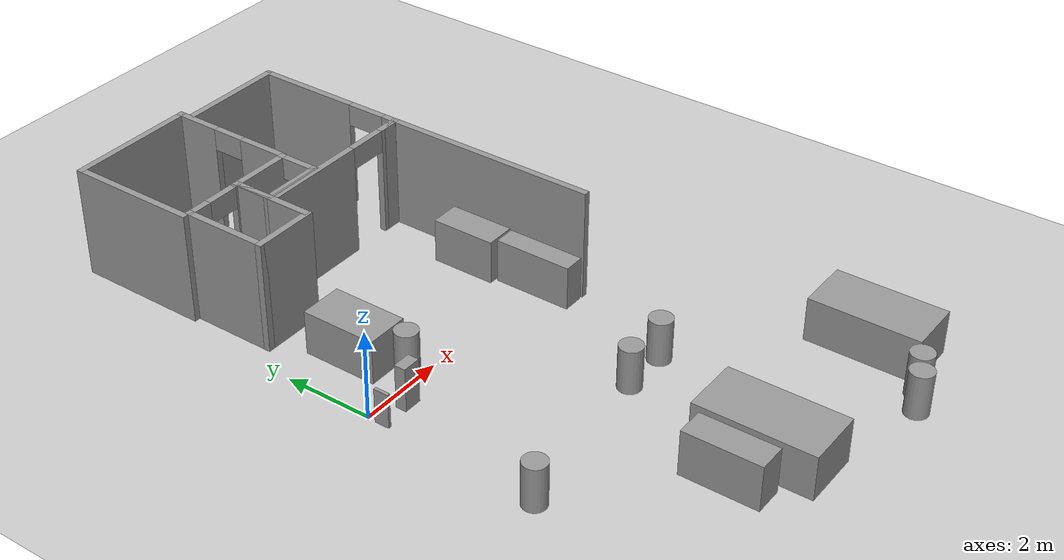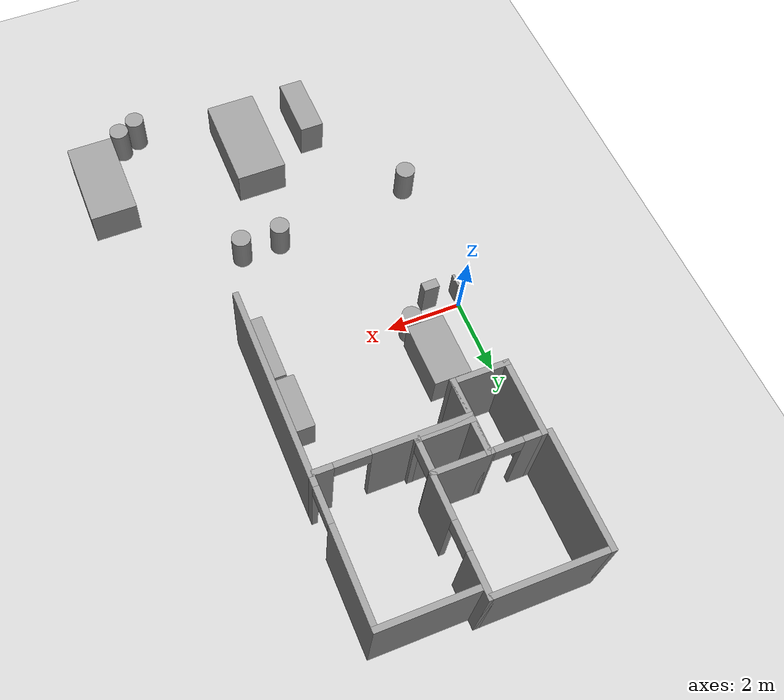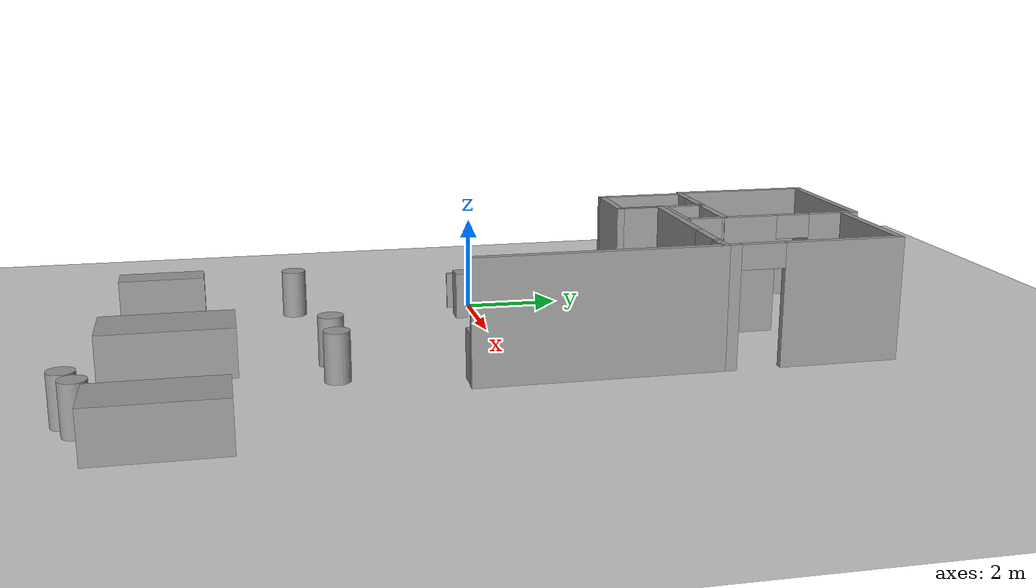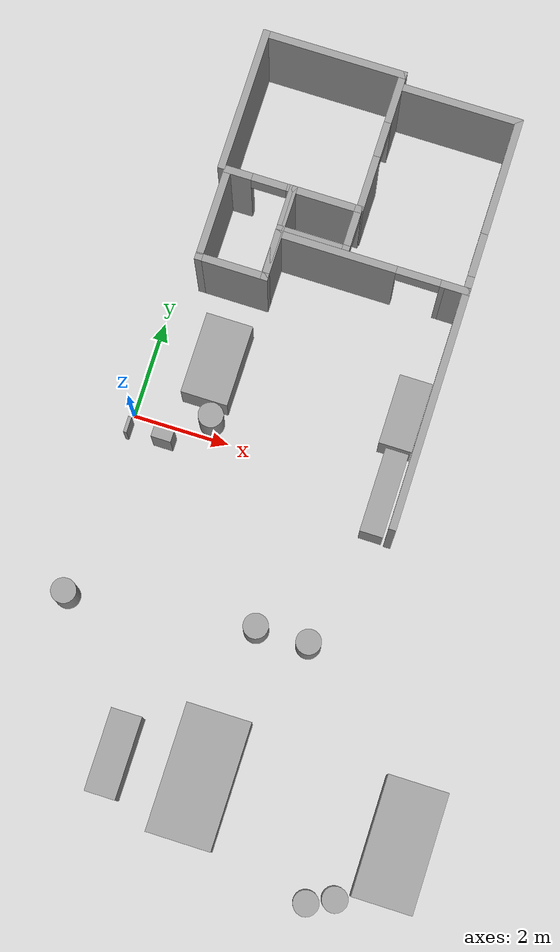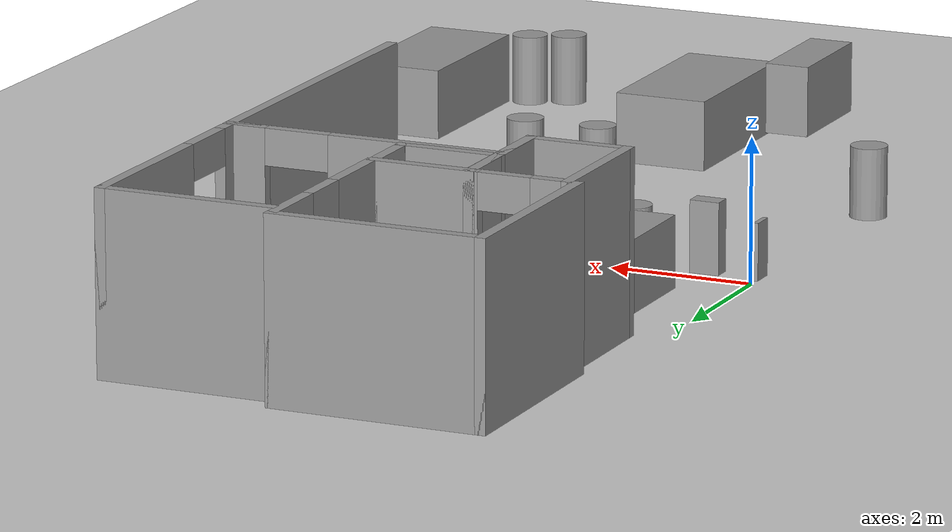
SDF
<sdf version="1.9">
 <world name="default">
  <model name="ground_plane">
   <static>true</static>
   <link name="link">
    <collision name="collision">
     <geometry><plane><normal>0 0 1</normal><size>100 100</size></plane></geometry>
     <surface><friction><ode><mu>100</mu><mu2>50</mu2></ode></friction></surface>
    </collision>
    <visual name="visual">
     <cast_shadows>false</cast_shadows>
     <geometry><plane><normal>0 0 1</normal><size>100 100</size></plane></geometry>
     <material>
      <script><uri>file://media/materials/scripts/gazebo.material</uri><name>Gazebo/Grey</name></script>
     </material>
    </visual>
   </link>
  </model>
  <model name="cma_L5">
   <pose>3.77502 1.45512 0 0 0 0</pose>
   <link name="Wall_0">
    <collision name="Wall_0_Collision">
     <geometry><box><size>1 0.14999999999999999 2.5</size></box></geometry>
     <pose>0 0 1.25 0 0 0</pose>
    </collision>
    <visual name="Wall_0_Visual">
     <pose>0 0 1.25 0 0 0</pose>
     <geometry><box><size>1 0.14999999999999999 2.5</size></box></geometry>
     <material>
      <script><uri>file://media/materials/scripts/gazebo.material</uri><name>Gazebo/Grey</name></script>
      <ambient>1 1 1 1</ambient>
     </material>
    </visual>
    <pose>-1.925 2 0 0 0 1.5708</pose>
   </link>
   <link name="Wall_1">
    <pose>0 2.4249999999999998 0 0 0 0</pose>
    <visual name="Wall_1_Visual_0">
     <pose>-0.75249999999999995 0 1.25 0 0 0</pose>
     <geometry><box><size>2.4950000000000001 0.14999999999999999 2.5</size></box></geometry>
     <material>
      <script><uri>file://media/materials/scripts/gazebo.material</uri><name>Gazebo/Grey</name></script>
      <ambient>1 1 1 1</ambient>
     </material>
    </visual>
    <collision name="Wall_1_Collision_0">
     <geometry><box><size>2.4950000000000001 0.14999999999999999 2.5</size></box></geometry>
     <pose>-0.75249999999999995 0 1.25 0 0 0</pose>
    </collision>
    <visual name="Wall_1_Visual_1">
     <pose>1.6975 0 1.25 0 0 0</pose>
     <geometry><box><size>0.60499999999999998 0.14999999999999999 2.5</size></box></geometry>
     <material>
      <script><uri>file://media/materials/scripts/gazebo.material</uri><name>Gazebo/Grey</name></script>
      <ambient>1 1 1 1</ambient>
     </material>
    </visual>
    <collision name="Wall_1_Collision_1">
     <geometry><box><size>0.60499999999999998 0.14999999999999999 2.5</size></box></geometry>
     <pose>1.6975 0 1.25 0 0 0</pose>
    </collision>
    <visual name="Wall_1_Visual_2">
     <pose>0.94499999999999995 0 2.25 0 0 0</pose>
     <geometry><box><size>0.90000000000000002 0.14999999999999999 0.5</size></box></geometry>
     <material>
      <script><uri>file://media/materials/scripts/gazebo.material</uri><name>Gazebo/Grey</name></script>
      <ambient>1 1 1 1</ambient>
     </material>
    </visual>
    <collision name="Wall_1_Collision_2">
     <geometry><box><size>0.90000000000000002 0.14999999999999999 0.5</size></box></geometry>
     <pose>0.94499999999999995 0 2.25 0 0 0</pose>
    </collision>
   </link>
   <link name="Wall_3">
    <collision name="Wall_3_Collision">
     <geometry><box><size>5 0.14999999999999999 2.5</size></box></geometry>
     <pose>0 0 1.25 0 0 0</pose>
    </collision>
    <visual name="Wall_3_Visual">
     <pose>0 0 1.25 0 0 0</pose>
     <geometry><box><size>5 0.14999999999999999 2.5</size></box></geometry>
     <material>
      <script><uri>file://media/materials/scripts/gazebo.material</uri><name>Gazebo/Grey</name></script>
      <ambient>1 1 1 1</ambient>
     </material>
    </visual>
    <pose>1.925 0 0 0 0 -1.5708</pose>
   </link>
   <static>true</static>
  </model>
  <model name="cma_dispensa">
   <pose>2.5258400000000001 4.4011899999999997 0 0 0 0</pose>
   <link name="Wall_5">
    <collision name="Wall_5_Collision">
     <geometry><box><size>1 0.14999999999999999 2.5</size></box></geometry>
     <pose>0 0 1.25 0 0 0</pose>
    </collision>
    <visual name="Wall_5_Visual">
     <pose>0 0 1.25 0 0 0</pose>
     <geometry><box><size>1 0.14999999999999999 2.5</size></box></geometry>
     <material>
      <script><uri>file://media/materials/scripts/gazebo.material</uri><name>Gazebo/Grey</name></script>
      <ambient>1 1 1 1</ambient>
     </material>
    </visual>
    <pose>-0.67500000000000004 0 0 0 0 1.5708</pose>
   </link>
   <link name="Wall_6">
    <collision name="Wall_6_Collision">
     <geometry><box><size>1.5 0.14999999999999999 2.5</size></box></geometry>
     <pose>0 0 1.25 0 0 0</pose>
    </collision>
    <visual name="Wall_6_Visual">
     <pose>0 0 1.25 0 0 0</pose>
     <geometry><box><size>1.5 0.14999999999999999 2.5</size></box></geometry>
     <material>
      <script><uri>file://media/materials/scripts/gazebo.material</uri><name>Gazebo/Grey</name></script>
      <ambient>1 1 1 1</ambient>
     </material>
    </visual>
    <pose>0 0.42499999999999999 0 0 0 0</pose>
   </link>
   <link name="Wall_7">
    <pose>0.67500000000000004 0 0 0 0 -1.5708</pose>
    <visual name="Wall_7_Visual_0">
     <pose>-0.42749999999999999 0 1.25 0 0 0</pose>
     <geometry><box><size>0.14499999999999999 0.14999999999999999 2.5</size></box></geometry>
     <material>
      <script><uri>file://media/materials/scripts/gazebo.material</uri><name>Gazebo/Grey</name></script>
      <ambient>1 1 1 1</ambient>
     </material>
    </visual>
    <collision name="Wall_7_Collision_0">
     <geometry><box><size>0.14499999999999999 0.14999999999999999 2.5</size></box></geometry>
     <pose>-0.42749999999999999 0 1.25 0 0 0</pose>
    </collision>
    <visual name="Wall_7_Visual_1">
     <pose>0.42249999999999999 0 1.25 0 0 0</pose>
     <geometry><box><size>0.155 0.14999999999999999 2.5</size></box></geometry>
     <material>
      <script><uri>file://media/materials/scripts/gazebo.material</uri><name>Gazebo/Grey</name></script>
      <ambient>1 1 1 1</ambient>
     </material>
    </visual>
    <collision name="Wall_7_Collision_1">
     <geometry><box><size>0.155 0.14999999999999999 2.5</size></box></geometry>
     <pose>0.42249999999999999 0 1.25 0 0 0</pose>
    </collision>
    <visual name="Wall_7_Visual_2">
     <pose>-0.0050000000000000001 0 2.25 0 0 0</pose>
     <geometry><box><size>0.69999999999999996 0.14999999999999999 0.5</size></box></geometry>
     <material>
      <script><uri>file://media/materials/scripts/gazebo.material</uri><name>Gazebo/Grey</name></script>
      <ambient>1 1 1 1</ambient>
     </material>
    </visual>
    <collision name="Wall_7_Collision_2">
     <geometry><box><size>0.69999999999999996 0.14999999999999999 0.5</size></box></geometry>
     <pose>-0.0050000000000000001 0 2.25 0 0 0</pose>
    </collision>
   </link>
   <link name="Wall_8">
    <collision name="Wall_8_Collision">
     <geometry><box><size>1.5 0.14999999999999999 2.5</size></box></geometry>
     <pose>0 0 1.25 0 0 0</pose>
    </collision>
    <visual name="Wall_8_Visual">
     <pose>0 0 1.25 0 0 0</pose>
     <geometry><box><size>1.5 0.14999999999999999 2.5</size></box></geometry>
     <material>
      <script><uri>file://media/materials/scripts/gazebo.material</uri><name>Gazebo/Grey</name></script>
      <ambient>1 1 1 1</ambient>
     </material>
    </visual>
    <pose>0 -0.42499999999999999 0 0 0 3.1415899999999999</pose>
   </link>
   <static>true</static>
  </model>
  <model name="cma_banheiro_e">
   <pose>1.1835800000000001 3.89879 0 0 0 0</pose>
   <link name="Wall_10">
    <collision name="Wall_10_Collision">
     <geometry><box><size>1.5 0.14999999999999999 2.5</size></box></geometry>
     <pose>0 0 1.25 0 0 0</pose>
    </collision>
    <visual name="Wall_10_Visual">
     <pose>0 0 1.25 0 0 0</pose>
     <geometry><box><size>1.5 0.14999999999999999 2.5</size></box></geometry>
     <material>
      <script><uri>file://media/materials/scripts/gazebo.material</uri><name>Gazebo/Grey</name></script>
      <ambient>1 1 1 1</ambient>
     </material>
    </visual>
    <pose>0 -0.92500000000000004 0 0 0 3.1415899999999999</pose>
   </link>
   <link name="Wall_11">
    <collision name="Wall_11_Collision">
     <geometry><box><size>2 0.14999999999999999 2.5</size></box></geometry>
     <pose>0 0 1.25 0 0 0</pose>
    </collision>
    <visual name="Wall_11_Visual">
     <pose>0 0 1.25 0 0 0</pose>
     <geometry><box><size>2 0.14999999999999999 2.5</size></box></geometry>
     <material>
      <script><uri>file://media/materials/scripts/gazebo.material</uri><name>Gazebo/Grey</name></script>
      <ambient>1 1 1 1</ambient>
     </material>
    </visual>
    <pose>-0.67500000000000004 0 0 0 0 1.5708</pose>
   </link>
   <link name="Wall_12">
    <pose>0 0.92500000000000004 0 0 0 0</pose>
    <visual name="Wall_12_Visual_0">
     <pose>-0.46250000000000002 0 1.25 0 0 0</pose>
     <geometry><box><size>0.57499999999999996 0.14999999999999999 2.5</size></box></geometry>
     <material>
      <script><uri>file://media/materials/scripts/gazebo.material</uri><name>Gazebo/Grey</name></script>
      <ambient>1 1 1 1</ambient>
     </material>
    </visual>
    <collision name="Wall_12_Collision_0">
     <geometry><box><size>0.57499999999999996 0.14999999999999999 2.5</size></box></geometry>
     <pose>-0.46250000000000002 0 1.25 0 0 0</pose>
    </collision>
    <visual name="Wall_12_Visual_1">
     <pose>0.64749999999999996 0 1.25 0 0 0</pose>
     <geometry><box><size>0.20499999999999999 0.14999999999999999 2.5</size></box></geometry>
     <material>
      <script><uri>file://media/materials/scripts/gazebo.material</uri><name>Gazebo/Grey</name></script>
      <ambient>1 1 1 1</ambient>
     </material>
    </visual>
    <collision name="Wall_12_Collision_1">
     <geometry><box><size>0.20499999999999999 0.14999999999999999 2.5</size></box></geometry>
     <pose>0.64749999999999996 0 1.25 0 0 0</pose>
    </collision>
    <visual name="Wall_12_Visual_2">
     <pose>0.185 0 2.25 0 0 0</pose>
     <geometry><box><size>0.71999999999999997 0.14999999999999999 0.5</size></box></geometry>
     <material>
      <script><uri>file://media/materials/scripts/gazebo.material</uri><name>Gazebo/Grey</name></script>
      <ambient>1 1 1 1</ambient>
     </material>
    </visual>
    <collision name="Wall_12_Collision_2">
     <geometry><box><size>0.71999999999999997 0.14999999999999999 0.5</size></box></geometry>
     <pose>0.185 0 2.25 0 0 0</pose>
    </collision>
   </link>
   <link name="Wall_13">
    <collision name="Wall_13_Collision">
     <geometry><box><size>2 0.14999999999999999 2.5</size></box></geometry>
     <pose>0 0 1.25 0 0 0</pose>
    </collision>
    <visual name="Wall_13_Visual">
     <pose>0 0 1.25 0 0 0</pose>
     <geometry><box><size>2 0.14999999999999999 2.5</size></box></geometry>
     <material>
      <script><uri>file://media/materials/scripts/gazebo.material</uri><name>Gazebo/Grey</name></script>
      <ambient>1 1 1 1</ambient>
     </material>
    </visual>
    <pose>0.67500000000000004 0 0 0 0 -1.5708</pose>
   </link>
   <static>true</static>
  </model>
  <model name="cma_qe">
   <pose>1.79922 6.3014200000000002 0 0 0 0</pose>
   <link name="Wall_15">
    <collision name="Wall_15_Collision">
     <geometry><box><size>3 0.14999999999999999 2.5</size></box></geometry>
     <pose>0 0 1.25 0 0 0</pose>
    </collision>
    <visual name="Wall_15_Visual">
     <pose>0 0 1.25 0 0 0</pose>
     <geometry><box><size>3 0.14999999999999999 2.5</size></box></geometry>
     <material>
      <script><uri>file://media/materials/scripts/gazebo.material</uri><name>Gazebo/Grey</name></script>
      <ambient>1 1 1 1</ambient>
     </material>
    </visual>
    <pose>-1.425 0 0 0 0 1.5708</pose>
   </link>
   <link name="Wall_16">
    <collision name="Wall_16_Collision">
     <geometry><box><size>3 0.14999999999999999 2.5</size></box></geometry>
     <pose>0 0 1.25 0 0 0</pose>
    </collision>
    <visual name="Wall_16_Visual">
     <pose>0 0 1.25 0 0 0</pose>
     <geometry><box><size>3 0.14999999999999999 2.5</size></box></geometry>
     <material>
      <script><uri>file://media/materials/scripts/gazebo.material</uri><name>Gazebo/Grey</name></script>
      <ambient>1 1 1 1</ambient>
     </material>
    </visual>
    <pose>0 1.425 0 0 0 0</pose>
   </link>
   <link name="Wall_17">
    <pose>1.425 0 0 0 0 -1.5708</pose>
    <visual name="Wall_17_Visual_0">
     <pose>-0.94499999999999995 0 1.25 0 0 0</pose>
     <geometry><box><size>1.1100000000000001 0.14999999999999999 2.5</size></box></geometry>
     <material>
      <script><uri>file://media/materials/scripts/gazebo.material</uri><name>Gazebo/Grey</name></script>
      <ambient>1 1 1 1</ambient>
     </material>
    </visual>
    <collision name="Wall_17_Collision_0">
     <geometry><box><size>1.1100000000000001 0.14999999999999999 2.5</size></box></geometry>
     <pose>-0.94499999999999995 0 1.25 0 0 0</pose>
    </collision>
    <visual name="Wall_17_Visual_1">
     <pose>0.92000000000000004 0 1.25 0 0 0</pose>
     <geometry><box><size>1.1599999999999999 0.14999999999999999 2.5</size></box></geometry>
     <material>
      <script><uri>file://media/materials/scripts/gazebo.material</uri><name>Gazebo/Grey</name></script>
      <ambient>1 1 1 1</ambient>
     </material>
    </visual>
    <collision name="Wall_17_Collision_1">
     <geometry><box><size>1.1599999999999999 0.14999999999999999 2.5</size></box></geometry>
     <pose>0.92000000000000004 0 1.25 0 0 0</pose>
    </collision>
    <visual name="Wall_17_Visual_2">
     <pose>-0.025000000000000001 0 2.25 0 0 0</pose>
     <geometry><box><size>0.72999999999999998 0.14999999999999999 0.5</size></box></geometry>
     <material>
      <script><uri>file://media/materials/scripts/gazebo.material</uri><name>Gazebo/Grey</name></script>
      <ambient>1 1 1 1</ambient>
     </material>
    </visual>
    <collision name="Wall_17_Collision_2">
     <geometry><box><size>0.72999999999999998 0.14999999999999999 0.5</size></box></geometry>
     <pose>-0.025000000000000001 0 2.25 0 0 0</pose>
    </collision>
   </link>
   <static>true</static>
  </model>
  <model name="cma_area2">
   <pose>4.5227500000000003 5.6786199999999996 0 0 0 0</pose>
   <link name="Wall_23">
    <collision name="Wall_23_Collision">
     <geometry><box><size>2.5 0.14999999999999999 2.5</size></box></geometry>
     <pose>0 0 1.25 0 0 0</pose>
    </collision>
    <visual name="Wall_23_Visual">
     <pose>0 0 1.25 0 0 0</pose>
     <geometry><box><size>2.5 0.14999999999999999 2.5</size></box></geometry>
     <material>
      <script><uri>file://media/materials/scripts/gazebo.material</uri><name>Gazebo/Grey</name></script>
      <ambient>1 1 1 1</ambient>
     </material>
    </visual>
    <pose>0 1.8 0 0 0 0</pose>
   </link>
   <link name="Wall_24">
    <pose>1.175 0 0 0 0 -1.5708</pose>
    <visual name="Wall_24_Visual_0">
     <pose>-0.64249999999999996 0 1.25 0 0 0</pose>
     <geometry><box><size>2.4649999999999999 0.14999999999999999 2.5</size></box></geometry>
     <material>
      <script><uri>file://media/materials/scripts/gazebo.material</uri><name>Gazebo/Grey</name></script>
      <ambient>1 1 1 1</ambient>
     </material>
    </visual>
    <collision name="Wall_24_Collision_0">
     <geometry><box><size>2.4649999999999999 0.14999999999999999 2.5</size></box></geometry>
     <pose>-0.64249999999999996 0 1.25 0 0 0</pose>
    </collision>
    <visual name="Wall_24_Visual_1">
     <pose>1.6825000000000001 0 1.25 0 0 0</pose>
     <geometry><box><size>0.38500000000000001 0.14999999999999999 2.5</size></box></geometry>
     <material>
      <script><uri>file://media/materials/scripts/gazebo.material</uri><name>Gazebo/Grey</name></script>
      <ambient>1 1 1 1</ambient>
     </material>
    </visual>
    <collision name="Wall_24_Collision_1">
     <geometry><box><size>0.38500000000000001 0.14999999999999999 2.5</size></box></geometry>
     <pose>1.6825000000000001 0 1.25 0 0 0</pose>
    </collision>
    <visual name="Wall_24_Visual_2">
     <pose>1.04 0 2.25 0 0 0</pose>
     <geometry><box><size>0.90000000000000002 0.14999999999999999 0.5</size></box></geometry>
     <material>
      <script><uri>file://media/materials/scripts/gazebo.material</uri><name>Gazebo/Grey</name></script>
      <ambient>1 1 1 1</ambient>
     </material>
    </visual>
    <collision name="Wall_24_Collision_2">
     <geometry><box><size>0.90000000000000002 0.14999999999999999 0.5</size></box></geometry>
     <pose>1.04 0 2.25 0 0 0</pose>
    </collision>
   </link>
   <link name="Wall_25">
    <collision name="Wall_25_Collision">
     <geometry><box><size>0.5 0.14999999999999999 2.5</size></box></geometry>
     <pose>0 0 1.25 0 0 0</pose>
    </collision>
    <visual name="Wall_25_Visual">
     <pose>0 0 1.25 0 0 0</pose>
     <geometry><box><size>0.5 0.14999999999999999 2.5</size></box></geometry>
     <material>
      <script><uri>file://media/materials/scripts/gazebo.material</uri><name>Gazebo/Grey</name></script>
      <ambient>1 1 1 1</ambient>
     </material>
    </visual>
    <pose>1 -1.8 0 0 0 3.1415899999999999</pose>
   </link>
   <static>true</static>
  </model>
  <model name="cma_picador_0">
   <link name="link_2">
    <pose>-0.7258 -1.6910400000000001 0 0 0 0</pose>
    <inertial>
     <mass>0.10473200000000001</mass>
     <inertia>
      <ixx>0.0092790600000000004</ixx>
      <ixy>0</ixy>
      <ixz>0</ixz>
      <iyy>0.010243</iyy>
      <iyz>0</iyz>
      <izz>0.0020667200000000002</izz>
     </inertia>
    </inertial>
    <visual name="visual">
     <geometry><box><size>0.416688 0.25134000000000001 1</size></box></geometry>
     <material>
      <lighting>true</lighting>
      <script><uri>file://media/materials/scripts/gazebo.material</uri><name>Gazebo/Grey</name></script>
      <ambient>0.300000012 0.300000012 0.300000012 1</ambient>
      <diffuse>0.699999988 0.699999988 0.699999988 1</diffuse>
      <specular>0.00999999978 0.00999999978 0.00999999978 1</specular>
      <emissive>0 0 0 1</emissive>
     </material>
    </visual>
    <collision name="collision">
     <geometry><box><size>0.416688 0.25134000000000001 1</size></box></geometry>
     <surface>
      <friction>
       <ode><mu>1</mu><mu2>1</mu2><fdir1>0 0 0</fdir1><slip1>0</slip1><slip2>0</slip2></ode>
       <torsional>
        <coefficient>1</coefficient>
        <patch_radius>0</patch_radius>
        <surface_radius>0</surface_radius>
        <use_patch_radius>true</use_patch_radius>
        <ode><slip>0</slip></ode>
       </torsional>
      </friction>
      <bounce><restitution_coefficient>0</restitution_coefficient><threshold>1000000</threshold></bounce>
      <contact>
       <collide_without_contact>false</collide_without_contact>
       <collide_without_contact_bitmask>1</collide_without_contact_bitmask>
       <collide_bitmask>1</collide_bitmask>
       <ode>
        <soft_cfm>0</soft_cfm>
        <soft_erp>0.20000000000000001</soft_erp>
        <kp>10000000000000</kp>
        <kd>1</kd>
        <max_vel>0.01</max_vel>
        <min_depth>0</min_depth>
       </ode>
       <bullet>
        <split_impulse>true</split_impulse>
        <split_impulse_penetration_threshold>-0.01</split_impulse_penetration_threshold>
        <soft_cfm>0</soft_cfm>
        <soft_erp>0.20000000000000001</soft_erp>
        <kp>10000000000000</kp>
        <kd>1</kd>
       </bullet>
      </contact>
     </surface>
    </collision>
   </link>
   <static>false</static>
   <pose>1.4887699999999999 1.3528 0.49999300000000002 -2.0000000000000003e-06 3.0000000000000009e-06 -0.00089899999999999984</pose>
  </model>
  <model name="cma_cesto">
   <link name="link_1">
    <pose>-0.32965899999999998 -1.55494 0 0 0 0</pose>
    <inertial>
     <mass>0.267897</mass>
     <inertia>
      <ixx>0.026810199999999999</ixx>
      <ixy>0</ixy>
      <ixz>0</ixz>
      <iyy>0.026810199999999999</iyy>
      <iyz>0</iyz>
      <izz>0.0089711099999999992</izz>
     </inertia>
    </inertial>
    <visual name="visual">
     <geometry><cylinder><radius>0.25879200000000002</radius><length>1</length></cylinder></geometry>
     <material>
      <lighting>true</lighting>
      <script><uri>file://media/materials/scripts/gazebo.material</uri><name>Gazebo/Grey</name></script>
      <ambient>0.300000012 0.300000012 0.300000012 1</ambient>
      <diffuse>0.699999988 0.699999988 0.699999988 1</diffuse>
      <specular>0.00999999978 0.00999999978 0.00999999978 1</specular>
      <emissive>0 0 0 1</emissive>
     </material>
    </visual>
    <collision name="collision">
     <geometry><cylinder><radius>0.25879200000000002</radius><length>1</length></cylinder></geometry>
     <surface>
      <friction>
       <ode><mu>1</mu><mu2>1</mu2><fdir1>0 0 0</fdir1><slip1>0</slip1><slip2>0</slip2></ode>
       <torsional>
        <coefficient>1</coefficient>
        <patch_radius>0</patch_radius>
        <surface_radius>0</surface_radius>
        <use_patch_radius>true</use_patch_radius>
        <ode><slip>0</slip></ode>
       </torsional>
      </friction>
      <bounce><restitution_coefficient>0</restitution_coefficient><threshold>1000000</threshold></bounce>
      <contact>
       <collide_without_contact>false</collide_without_contact>
       <collide_without_contact_bitmask>1</collide_without_contact_bitmask>
       <collide_bitmask>1</collide_bitmask>
       <ode>
        <soft_cfm>0</soft_cfm>
        <soft_erp>0.20000000000000001</soft_erp>
        <kp>10000000000000</kp>
        <kd>1</kd>
        <max_vel>0.01</max_vel>
        <min_depth>0</min_depth>
       </ode>
       <bullet>
        <split_impulse>true</split_impulse>
        <split_impulse_penetration_threshold>-0.01</split_impulse_penetration_threshold>
        <soft_cfm>0</soft_cfm>
        <soft_erp>0.20000000000000001</soft_erp>
        <kp>10000000000000</kp>
        <kd>1</kd>
       </bullet>
      </contact>
     </surface>
    </collision>
   </link>
   <static>false</static>
   <pose>1.9109700000000001 1.85863 0.499998 0 0 -0.013204999999999998</pose>
  </model>
  <model name="cma_sofa_2_lugares">
   <link name="link_0">
    <pose>-0.034013000000000002 -0.039828000000000002 0 0 0 0</pose>
    <inertial>
     <mass>1.6607099999999999</mass>
     <inertia>
      <ixx>0.53818299999999997</ixx>
      <ixy>0</ixy>
      <ixz>0</ixz>
      <iyy>0.27051900000000001</iyy>
      <iyz>0</iyz>
      <izz>0.53191500000000003</izz>
     </inertia>
    </inertial>
    <visual name="visual">
     <geometry><box><size>0.97714699999999999 1.6996800000000001 1</size></box></geometry>
     <material>
      <lighting>true</lighting>
      <script><uri>file://media/materials/scripts/gazebo.material</uri><name>Gazebo/Grey</name></script>
      <ambient>0.300000012 0.300000012 0.300000012 1</ambient>
      <diffuse>0.699999988 0.699999988 0.699999988 1</diffuse>
      <specular>0.00999999978 0.00999999978 0.00999999978 1</specular>
      <emissive>0 0 0 1</emissive>
     </material>
    </visual>
    <collision name="collision">
     <geometry><box><size>0.97714699999999999 1.6996800000000001 1</size></box></geometry>
     <surface>
      <friction>
       <ode><mu>1</mu><mu2>1</mu2><fdir1>0 0 0</fdir1><slip1>0</slip1><slip2>0</slip2></ode>
       <torsional>
        <coefficient>1</coefficient>
        <patch_radius>0</patch_radius>
        <surface_radius>0</surface_radius>
        <use_patch_radius>true</use_patch_radius>
        <ode><slip>0</slip></ode>
       </torsional>
      </friction>
      <bounce><restitution_coefficient>0</restitution_coefficient><threshold>1000000</threshold></bounce>
      <contact>
       <collide_without_contact>false</collide_without_contact>
       <collide_without_contact_bitmask>1</collide_without_contact_bitmask>
       <collide_bitmask>1</collide_bitmask>
       <ode>
        <soft_cfm>0</soft_cfm>
        <soft_erp>0.20000000000000001</soft_erp>
        <kp>10000000000000</kp>
        <kd>1</kd>
        <max_vel>0.01</max_vel>
        <min_depth>0</min_depth>
       </ode>
       <bullet>
        <split_impulse>true</split_impulse>
        <split_impulse_penetration_threshold>-0.01</split_impulse_penetration_threshold>
        <soft_cfm>0</soft_cfm>
        <soft_erp>0.20000000000000001</soft_erp>
        <kp>10000000000000</kp>
        <kd>1</kd>
       </bullet>
      </contact>
     </surface>
    </collision>
   </link>
   <static>false</static>
   <pose>1.3638600000000001 1.4726699999999999 0.5 0 0 -0.000968</pose>
  </model>
  <model name="cma_sofa_ch2">
   <link name="link_0">
    <pose>7.5415200000000002 -9.0606100000000005 0.5 0 0 0</pose>
    <inertial>
     <mass>3.05287</mass>
     <inertia>
      <ixx>1.79053</ixx>
      <ixy>0</ixy>
      <ixz>0</ixz>
      <iyy>0.64708900000000003</iyy>
      <iyz>0</iyz>
      <izz>1.9288099999999999</izz>
     </inertia>
    </inertial>
    <visual name="visual">
     <geometry><box><size>1.2423500000000001 2.45729 1</size></box></geometry>
     <material>
      <lighting>true</lighting>
      <script><uri>file://media/materials/scripts/gazebo.material</uri><name>Gazebo/Grey</name></script>
      <ambient>0.300000012 0.300000012 0.300000012 1</ambient>
      <diffuse>0.699999988 0.699999988 0.699999988 1</diffuse>
      <specular>0.00999999978 0.00999999978 0.00999999978 1</specular>
      <emissive>0 0 0 1</emissive>
     </material>
    </visual>
    <collision name="collision">
     <geometry><box><size>1.2423500000000001 2.45729 1</size></box></geometry>
     <surface>
      <friction>
       <ode><mu>1</mu><mu2>1</mu2><fdir1>0 0 0</fdir1><slip1>0</slip1><slip2>0</slip2></ode>
       <torsional>
        <coefficient>1</coefficient>
        <patch_radius>0</patch_radius>
        <surface_radius>0</surface_radius>
        <use_patch_radius>true</use_patch_radius>
        <ode><slip>0</slip></ode>
       </torsional>
      </friction>
      <bounce><restitution_coefficient>0</restitution_coefficient><threshold>1000000</threshold></bounce>
      <contact>
       <collide_without_contact>false</collide_without_contact>
       <collide_without_contact_bitmask>1</collide_without_contact_bitmask>
       <collide_bitmask>1</collide_bitmask>
       <ode>
        <soft_cfm>0</soft_cfm>
        <soft_erp>0.20000000000000001</soft_erp>
        <kp>10000000000000</kp>
        <kd>1</kd>
        <max_vel>0.01</max_vel>
        <min_depth>0</min_depth>
       </ode>
       <bullet>
        <split_impulse>true</split_impulse>
        <split_impulse_penetration_threshold>-0.01</split_impulse_penetration_threshold>
        <soft_cfm>0</soft_cfm>
        <soft_erp>0.20000000000000001</soft_erp>
        <kp>10000000000000</kp>
        <kd>1</kd>
       </bullet>
      </contact>
     </surface>
    </collision>
   </link>
   <model name="cma_armarioL">
    <link name="link_0">
     <pose>3.6622599999999998 -6.1673499999999999 0.5 0 0 0</pose>
     <inertial>
      <mass>1.0482100000000001</mass>
      <inertia>
       <ixx>0.33087299999999997</ixx>
       <ixy>0</ixy>
       <ixz>0</ixz>
       <iyy>0.121777</iyy>
       <iyz>0</iyz>
       <izz>0.277949</izz>
      </inertia>
     </inertial>
     <visual name="visual">
      <geometry><box><size>0.62779200000000002 1.6697200000000001 1</size></box></geometry>
      <material>
       <lighting>true</lighting>
       <script><uri>file://media/materials/scripts/gazebo.material</uri><name>Gazebo/Grey</name></script>
       <ambient>0.300000012 0.300000012 0.300000012 1</ambient>
       <diffuse>0.699999988 0.699999988 0.699999988 1</diffuse>
       <specular>0.00999999978 0.00999999978 0.00999999978 1</specular>
       <emissive>0 0 0 1</emissive>
      </material>
     </visual>
     <collision name="collision">
      <geometry><box><size>0.62779200000000002 1.6697200000000001 1</size></box></geometry>
      <surface>
       <friction>
        <ode><mu>1</mu><mu2>1</mu2><fdir1>0 0 0</fdir1><slip1>0</slip1><slip2>0</slip2></ode>
        <torsional>
         <coefficient>1</coefficient>
         <patch_radius>0</patch_radius>
         <surface_radius>0</surface_radius>
         <use_patch_radius>true</use_patch_radius>
         <ode><slip>0</slip></ode>
        </torsional>
       </friction>
       <bounce><restitution_coefficient>0</restitution_coefficient><threshold>1000000</threshold></bounce>
       <contact>
        <collide_without_contact>false</collide_without_contact>
        <collide_without_contact_bitmask>1</collide_without_contact_bitmask>
        <collide_bitmask>1</collide_bitmask>
        <ode>
         <soft_cfm>0</soft_cfm>
         <soft_erp>0.20000000000000001</soft_erp>
         <kp>10000000000000</kp>
         <kd>1</kd>
         <max_vel>0.01</max_vel>
         <min_depth>0</min_depth>
        </ode>
        <bullet>
         <split_impulse>true</split_impulse>
         <split_impulse_penetration_threshold>-0.01</split_impulse_penetration_threshold>
         <soft_cfm>0</soft_cfm>
         <soft_erp>0.20000000000000001</soft_erp>
         <kp>10000000000000</kp>
         <kd>1</kd>
        </bullet>
       </contact>
      </surface>
     </collision>
    </link>
    <static>false</static>
    <pose>-1.9180299999999999 -2.9201100000000002 0.5 0 0 0</pose>
   </model>
   <model name="cma_cesto">
    <link name="link_1">
     <pose>-0.32965899999999998 -1.55494 0 0 0 0</pose>
     <inertial>
      <mass>0.267897</mass>
      <inertia>
       <ixx>0.026810199999999999</ixx>
       <ixy>0</ixy>
       <ixz>0</ixz>
       <iyy>0.026810199999999999</iyy>
       <iyz>0</iyz>
       <izz>0.0089711099999999992</izz>
      </inertia>
     </inertial>
     <visual name="visual">
      <geometry><cylinder><radius>0.25879200000000002</radius><length>1</length></cylinder></geometry>
      <material>
       <lighting>true</lighting>
       <script><uri>file://media/materials/scripts/gazebo.material</uri><name>Gazebo/Grey</name></script>
       <ambient>0.300000012 0.300000012 0.300000012 1</ambient>
       <diffuse>0.699999988 0.699999988 0.699999988 1</diffuse>
       <specular>0.00999999978 0.00999999978 0.00999999978 1</specular>
       <emissive>0 0 0 1</emissive>
      </material>
     </visual>
     <collision name="collision">
      <geometry><cylinder><radius>0.25879200000000002</radius><length>1</length></cylinder></geometry>
      <surface>
       <friction>
        <ode><mu>1</mu><mu2>1</mu2><fdir1>0 0 0</fdir1><slip1>0</slip1><slip2>0</slip2></ode>
        <torsional>
         <coefficient>1</coefficient>
         <patch_radius>0</patch_radius>
         <surface_radius>0</surface_radius>
         <use_patch_radius>true</use_patch_radius>
         <ode><slip>0</slip></ode>
        </torsional>
       </friction>
       <bounce><restitution_coefficient>0</restitution_coefficient><threshold>1000000</threshold></bounce>
       <contact>
        <collide_without_contact>false</collide_without_contact>
        <collide_without_contact_bitmask>1</collide_without_contact_bitmask>
        <collide_bitmask>1</collide_bitmask>
        <ode>
         <soft_cfm>0</soft_cfm>
         <soft_erp>0.20000000000000001</soft_erp>
         <kp>10000000000000</kp>
         <kd>1</kd>
         <max_vel>0.01</max_vel>
         <min_depth>0</min_depth>
        </ode>
        <bullet>
         <split_impulse>true</split_impulse>
         <split_impulse_penetration_threshold>-0.01</split_impulse_penetration_threshold>
         <soft_cfm>0</soft_cfm>
         <soft_erp>0.20000000000000001</soft_erp>
         <kp>10000000000000</kp>
         <kd>1</kd>
        </bullet>
       </contact>
      </surface>
     </collision>
    </link>
    <static>false</static>
    <pose>6.9793500000000002 -8.8850899999999999 0.5 0 0 0</pose>
   </model>
   <model name="cma_cesto_0">
    <link name="link_1">
     <pose>-0.32965899999999998 -1.55494 0 0 0 0</pose>
     <inertial>
      <mass>0.267897</mass>
      <inertia>
       <ixx>0.026810199999999999</ixx>
       <ixy>0</ixy>
       <ixz>0</ixz>
       <iyy>0.026810199999999999</iyy>
       <iyz>0</iyz>
       <izz>0.0089711099999999992</izz>
      </inertia>
     </inertial>
     <visual name="visual">
      <geometry><cylinder><radius>0.25879200000000002</radius><length>1</length></cylinder></geometry>
      <material>
       <lighting>true</lighting>
       <script><uri>file://media/materials/scripts/gazebo.material</uri><name>Gazebo/Grey</name></script>
       <ambient>0.300000012 0.300000012 0.300000012 1</ambient>
       <diffuse>0.699999988 0.699999988 0.699999988 1</diffuse>
       <specular>0.00999999978 0.00999999978 0.00999999978 1</specular>
       <emissive>0 0 0 1</emissive>
      </material>
     </visual>
     <collision name="collision">
      <geometry><cylinder><radius>0.25879200000000002</radius><length>1</length></cylinder></geometry>
      <surface>
       <friction>
        <ode><mu>1</mu><mu2>1</mu2><fdir1>0 0 0</fdir1><slip1>0</slip1><slip2>0</slip2></ode>
        <torsional>
         <coefficient>1</coefficient>
         <patch_radius>0</patch_radius>
         <surface_radius>0</surface_radius>
         <use_patch_radius>true</use_patch_radius>
         <ode><slip>0</slip></ode>
        </torsional>
       </friction>
       <bounce><restitution_coefficient>0</restitution_coefficient><threshold>1000000</threshold></bounce>
       <contact>
        <collide_without_contact>false</collide_without_contact>
        <collide_without_contact_bitmask>1</collide_without_contact_bitmask>
        <collide_bitmask>1</collide_bitmask>
        <ode>
         <soft_cfm>0</soft_cfm>
         <soft_erp>0.20000000000000001</soft_erp>
         <kp>10000000000000</kp>
         <kd>1</kd>
         <max_vel>0.01</max_vel>
         <min_depth>0</min_depth>
        </ode>
        <bullet>
         <split_impulse>true</split_impulse>
         <split_impulse_penetration_threshold>-0.01</split_impulse_penetration_threshold>
         <soft_cfm>0</soft_cfm>
         <soft_erp>0.20000000000000001</soft_erp>
         <kp>10000000000000</kp>
         <kd>1</kd>
        </bullet>
       </contact>
      </surface>
     </collision>
    </link>
    <static>false</static>
    <pose>6.4663000000000004 -9.1192200000000003 0.5 0 0 0</pose>
   </model>
   <model name="cma_cesto_1">
    <link name="link_1">
     <pose>-0.32965899999999998 -1.55494 0 0 0 0</pose>
     <inertial>
      <mass>0.267897</mass>
      <inertia>
       <ixx>0.026810199999999999</ixx>
       <ixy>0</ixy>
       <ixz>0</ixz>
       <iyy>0.026810199999999999</iyy>
       <iyz>0</iyz>
       <izz>0.0089711099999999992</izz>
      </inertia>
     </inertial>
     <visual name="visual">
      <geometry><cylinder><radius>0.25879200000000002</radius><length>1</length></cylinder></geometry>
      <material>
       <lighting>true</lighting>
       <script><uri>file://media/materials/scripts/gazebo.material</uri><name>Gazebo/Grey</name></script>
       <ambient>0.300000012 0.300000012 0.300000012 1</ambient>
       <diffuse>0.699999988 0.699999988 0.699999988 1</diffuse>
       <specular>0.00999999978 0.00999999978 0.00999999978 1</specular>
       <emissive>0 0 0 1</emissive>
      </material>
     </visual>
     <collision name="collision">
      <geometry><cylinder><radius>0.25879200000000002</radius><length>1</length></cylinder></geometry>
      <surface>
       <friction>
        <ode><mu>1</mu><mu2>1</mu2><fdir1>0 0 0</fdir1><slip1>0</slip1><slip2>0</slip2></ode>
        <torsional>
         <coefficient>1</coefficient>
         <patch_radius>0</patch_radius>
         <surface_radius>0</surface_radius>
         <use_patch_radius>true</use_patch_radius>
         <ode><slip>0</slip></ode>
        </torsional>
       </friction>
       <bounce><restitution_coefficient>0</restitution_coefficient><threshold>1000000</threshold></bounce>
       <contact>
        <collide_without_contact>false</collide_without_contact>
        <collide_without_contact_bitmask>1</collide_without_contact_bitmask>
        <collide_bitmask>1</collide_bitmask>
        <ode>
         <soft_cfm>0</soft_cfm>
         <soft_erp>0.20000000000000001</soft_erp>
         <kp>10000000000000</kp>
         <kd>1</kd>
         <max_vel>0.01</max_vel>
         <min_depth>0</min_depth>
        </ode>
        <bullet>
         <split_impulse>true</split_impulse>
         <split_impulse_penetration_threshold>-0.01</split_impulse_penetration_threshold>
         <soft_cfm>0</soft_cfm>
         <soft_erp>0.20000000000000001</soft_erp>
         <kp>10000000000000</kp>
         <kd>1</kd>
        </bullet>
       </contact>
      </surface>
     </collision>
    </link>
    <static>false</static>
    <pose>0.091229000000000005 -4.78918 0.5 0 0 0</pose>
   </model>
   <model name="cma_cesto_2">
    <link name="link_1">
     <pose>-0.32965899999999998 -1.55494 0 0 0 0</pose>
     <inertial>
      <mass>0.267897</mass>
      <inertia>
       <ixx>0.026810199999999999</ixx>
       <ixy>0</ixy>
       <ixz>0</ixz>
       <iyy>0.026810199999999999</iyy>
       <iyz>0</iyz>
       <izz>0.0089711099999999992</izz>
      </inertia>
     </inertial>
     <visual name="visual">
      <geometry><cylinder><radius>0.25879200000000002</radius><length>1</length></cylinder></geometry>
      <material>
       <lighting>true</lighting>
       <script><uri>file://media/materials/scripts/gazebo.material</uri><name>Gazebo/Grey</name></script>
       <ambient>0.300000012 0.300000012 0.300000012 1</ambient>
       <diffuse>0.699999988 0.699999988 0.699999988 1</diffuse>
       <specular>0.00999999978 0.00999999978 0.00999999978 1</specular>
       <emissive>0 0 0 1</emissive>
      </material>
     </visual>
     <collision name="collision">
      <geometry><cylinder><radius>0.25879200000000002</radius><length>1</length></cylinder></geometry>
      <surface>
       <friction>
        <ode><mu>1</mu><mu2>1</mu2><fdir1>0 0 0</fdir1><slip1>0</slip1><slip2>0</slip2></ode>
        <torsional>
         <coefficient>1</coefficient>
         <patch_radius>0</patch_radius>
         <surface_radius>0</surface_radius>
         <use_patch_radius>true</use_patch_radius>
         <ode><slip>0</slip></ode>
        </torsional>
       </friction>
       <bounce><restitution_coefficient>0</restitution_coefficient><threshold>1000000</threshold></bounce>
       <contact>
        <collide_without_contact>false</collide_without_contact>
        <collide_without_contact_bitmask>1</collide_without_contact_bitmask>
        <collide_bitmask>1</collide_bitmask>
        <ode>
         <soft_cfm>0</soft_cfm>
         <soft_erp>0.20000000000000001</soft_erp>
         <kp>10000000000000</kp>
         <kd>1</kd>
         <max_vel>0.01</max_vel>
         <min_depth>0</min_depth>
        </ode>
        <bullet>
         <split_impulse>true</split_impulse>
         <split_impulse_penetration_threshold>-0.01</split_impulse_penetration_threshold>
         <soft_cfm>0</soft_cfm>
         <soft_erp>0.20000000000000001</soft_erp>
         <kp>10000000000000</kp>
         <kd>1</kd>
        </bullet>
       </contact>
      </surface>
     </collision>
    </link>
    <static>false</static>
    <pose>5.00434 -4.3001500000000004 0.5 0 0 0</pose>
   </model>
   <model name="cma_cesto_3">
    <link name="link_1">
     <pose>-0.32965899999999998 -1.55494 0 0 0 0</pose>
     <inertial>
      <mass>0.267897</mass>
      <inertia>
       <ixx>0.026810199999999999</ixx>
       <ixy>0</ixy>
       <ixz>0</ixz>
       <iyy>0.026810199999999999</iyy>
       <iyz>0</iyz>
       <izz>0.0089711099999999992</izz>
      </inertia>
     </inertial>
     <visual name="visual">
      <geometry><cylinder><radius>0.25879200000000002</radius><length>1</length></cylinder></geometry>
      <material>
       <lighting>true</lighting>
       <script><uri>file://media/materials/scripts/gazebo.material</uri><name>Gazebo/Grey</name></script>
       <ambient>0.300000012 0.300000012 0.300000012 1</ambient>
       <diffuse>0.699999988 0.699999988 0.699999988 1</diffuse>
       <specular>0.00999999978 0.00999999978 0.00999999978 1</specular>
       <emissive>0 0 0 1</emissive>
      </material>
     </visual>
     <collision name="collision">
      <geometry><cylinder><radius>0.25879200000000002</radius><length>1</length></cylinder></geometry>
      <surface>
       <friction>
        <ode><mu>1</mu><mu2>1</mu2><fdir1>0 0 0</fdir1><slip1>0</slip1><slip2>0</slip2></ode>
        <torsional>
         <coefficient>1</coefficient>
         <patch_radius>0</patch_radius>
         <surface_radius>0</surface_radius>
         <use_patch_radius>true</use_patch_radius>
         <ode><slip>0</slip></ode>
        </torsional>
       </friction>
       <bounce><restitution_coefficient>0</restitution_coefficient><threshold>1000000</threshold></bounce>
       <contact>
        <collide_without_contact>false</collide_without_contact>
        <collide_without_contact_bitmask>1</collide_without_contact_bitmask>
        <collide_bitmask>1</collide_bitmask>
        <ode>
         <soft_cfm>0</soft_cfm>
         <soft_erp>0.20000000000000001</soft_erp>
         <kp>10000000000000</kp>
         <kd>1</kd>
         <max_vel>0.01</max_vel>
         <min_depth>0</min_depth>
        </ode>
        <bullet>
         <split_impulse>true</split_impulse>
         <split_impulse_penetration_threshold>-0.01</split_impulse_penetration_threshold>
         <soft_cfm>0</soft_cfm>
         <soft_erp>0.20000000000000001</soft_erp>
         <kp>10000000000000</kp>
         <kd>1</kd>
        </bullet>
       </contact>
      </surface>
     </collision>
    </link>
    <static>false</static>
    <pose>3.9176799999999998 -4.3154000000000003 0.5 0 0 0</pose>
   </model>
   <model name="cma_sofa_ch1">
    <link name="link_0">
     <pose>-3.9999999999999998e-06 5.0000000000000004e-06 0 0 0 0</pose>
     <inertial>
      <mass>3.5119199999999999</mass>
      <inertia>
       <ixx>2.3083100000000001</ixx>
       <ixy>0</ixy>
       <ixz>0</ixz>
       <iyy>0.81674599999999997</iyy>
       <iyz>0</iyz>
       <izz>2.5397400000000001</izz>
      </inertia>
     </inertial>
     <visual name="visual">
      <geometry><box><size>1.33823 2.62439 1</size></box></geometry>
      <material>
       <lighting>true</lighting>
       <script><uri>file://media/materials/scripts/gazebo.material</uri><name>Gazebo/Grey</name></script>
       <ambient>0.300000012 0.300000012 0.300000012 1</ambient>
       <diffuse>0.699999988 0.699999988 0.699999988 1</diffuse>
       <specular>0.00999999978 0.00999999978 0.00999999978 1</specular>
       <emissive>0 0 0 1</emissive>
      </material>
     </visual>
     <collision name="collision">
      <geometry><box><size>1.33823 2.62439 1</size></box></geometry>
      <surface>
       <friction>
        <ode><mu>1</mu><mu2>1</mu2><fdir1>0 0 0</fdir1><slip1>0</slip1><slip2>0</slip2></ode>
        <torsional>
         <coefficient>1</coefficient>
         <patch_radius>0</patch_radius>
         <surface_radius>0</surface_radius>
         <use_patch_radius>true</use_patch_radius>
         <ode><slip>0</slip></ode>
        </torsional>
       </friction>
       <bounce><restitution_coefficient>0</restitution_coefficient><threshold>1000000</threshold></bounce>
       <contact>
        <collide_without_contact>false</collide_without_contact>
        <collide_without_contact_bitmask>1</collide_without_contact_bitmask>
        <collide_bitmask>1</collide_bitmask>
        <ode>
         <soft_cfm>0</soft_cfm>
         <soft_erp>0.20000000000000001</soft_erp>
         <kp>10000000000000</kp>
         <kd>1</kd>
         <max_vel>0.01</max_vel>
         <min_depth>0</min_depth>
        </ode>
        <bullet>
         <split_impulse>true</split_impulse>
         <split_impulse_penetration_threshold>-0.01</split_impulse_penetration_threshold>
         <soft_cfm>0</soft_cfm>
         <soft_erp>0.20000000000000001</soft_erp>
         <kp>10000000000000</kp>
         <kd>1</kd>
        </bullet>
       </contact>
      </surface>
     </collision>
    </link>
    <static>false</static>
    <pose>3.4236 -8.9981600000000004 0.5 0 0 0</pose>
   </model>
   <static>false</static>
   <pose>0.11720999999999999 2.42164 0 0 0 0</pose>
  </model>
  <model name="cma_pe_mesa2">
   <link name="link_0">
    <pose>-9.9999999999999995e-07 0 0 0 0 0</pose>
    <inertial>
     <mass>0.0184993</mass>
     <inertia>
      <ixx>0.0011378499999999999</ixx>
      <ixy>0</ixy>
      <ixz>0</ixz>
      <iyy>0.00097356799999999996</iyy>
      <iyz>0</iyz>
      <izz>0.000179385</izz>
     </inertia>
    </inertial>
    <visual name="visual">
     <geometry><box><size>0.070004999999999998 0.33385999999999999 0.79159199999999996</size></box></geometry>
     <material>
      <lighting>true</lighting>
      <script><uri>file://media/materials/scripts/gazebo.material</uri><name>Gazebo/Grey</name></script>
      <ambient>0.300000012 0.300000012 0.300000012 1</ambient>
      <diffuse>0.699999988 0.699999988 0.699999988 1</diffuse>
      <specular>0.00999999978 0.00999999978 0.00999999978 1</specular>
      <emissive>0 0 0 1</emissive>
     </material>
    </visual>
    <collision name="collision">
     <geometry><box><size>0.070004999999999998 0.33385999999999999 0.79159199999999996</size></box></geometry>
     <surface>
      <friction>
       <ode><mu>1</mu><mu2>1</mu2><fdir1>0 0 0</fdir1><slip1>0</slip1><slip2>0</slip2></ode>
       <torsional>
        <coefficient>1</coefficient>
        <patch_radius>0</patch_radius>
        <surface_radius>0</surface_radius>
        <use_patch_radius>true</use_patch_radius>
        <ode><slip>0</slip></ode>
       </torsional>
      </friction>
      <bounce><restitution_coefficient>0</restitution_coefficient><threshold>1000000</threshold></bounce>
      <contact>
       <collide_without_contact>false</collide_without_contact>
       <collide_without_contact_bitmask>1</collide_without_contact_bitmask>
       <collide_bitmask>1</collide_bitmask>
       <ode>
        <soft_cfm>0</soft_cfm>
        <soft_erp>0.20000000000000001</soft_erp>
        <kp>10000000000000</kp>
        <kd>1</kd>
        <max_vel>0.01</max_vel>
        <min_depth>0</min_depth>
       </ode>
       <bullet>
        <split_impulse>true</split_impulse>
        <split_impulse_penetration_threshold>-0.01</split_impulse_penetration_threshold>
        <soft_cfm>0</soft_cfm>
        <soft_erp>0.20000000000000001</soft_erp>
        <kp>10000000000000</kp>
        <kd>1</kd>
       </bullet>
      </contact>
     </surface>
    </collision>
   </link>
   <static>false</static>
   <pose>0.0086250000000000007 -0.34209299999999998 0.39579500000000001 -4.0000000000000015e-06 -2.0000000000000003e-06 0.00049200000000000003</pose>
  </model>
  <model name="cma_geladeira">
   <link name="link_2">
    <pose>3.0000000000000001e-06 -3.9999999999999998e-06 0 0 0 0</pose>
    <inertial>
     <mass>0.994085</mass>
     <inertia>
      <ixx>0.258405</ixx>
      <ixy>0</ixy>
      <ixz>0</ixz>
      <iyy>0.12146800000000001</iyy>
      <iyz>0</iyz>
      <izz>0.21419199999999999</izz>
     </inertia>
    </inertial>
    <visual name="visual">
     <geometry><box><size>0.68284400000000001 1.4557899999999999 1</size></box></geometry>
     <material>
      <lighting>true</lighting>
      <script><uri>file://media/materials/scripts/gazebo.material</uri><name>Gazebo/Grey</name></script>
      <ambient>0.300000012 0.300000012 0.300000012 1</ambient>
      <diffuse>0.699999988 0.699999988 0.699999988 1</diffuse>
      <specular>0.00999999978 0.00999999978 0.00999999978 1</specular>
      <emissive>0 0 0 1</emissive>
     </material>
    </visual>
    <collision name="collision">
     <geometry><box><size>0.68284400000000001 1.4557899999999999 1</size></box></geometry>
     <surface>
      <friction>
       <ode><mu>1</mu><mu2>1</mu2><fdir1>0 0 0</fdir1><slip1>0</slip1><slip2>0</slip2></ode>
       <torsional>
        <coefficient>1</coefficient>
        <patch_radius>0</patch_radius>
        <surface_radius>0</surface_radius>
        <use_patch_radius>true</use_patch_radius>
        <ode><slip>0</slip></ode>
       </torsional>
      </friction>
      <bounce><restitution_coefficient>0</restitution_coefficient><threshold>1000000</threshold></bounce>
      <contact>
       <collide_without_contact>false</collide_without_contact>
       <collide_without_contact_bitmask>1</collide_without_contact_bitmask>
       <collide_bitmask>1</collide_bitmask>
       <ode>
        <soft_cfm>0</soft_cfm>
        <soft_erp>0.20000000000000001</soft_erp>
        <kp>10000000000000</kp>
        <kd>1</kd>
        <max_vel>0.01</max_vel>
        <min_depth>0</min_depth>
       </ode>
       <bullet>
        <split_impulse>true</split_impulse>
        <split_impulse_penetration_threshold>-0.01</split_impulse_penetration_threshold>
        <soft_cfm>0</soft_cfm>
        <soft_erp>0.20000000000000001</soft_erp>
        <kp>10000000000000</kp>
        <kd>1</kd>
       </bullet>
      </contact>
     </surface>
    </collision>
   </link>
   <static>false</static>
   <pose>5.2679099999999996 1.5129600000000001 0.50000100000000003 2.0679515313918749e-25 -3.0000000000000001e-06 0.00087599999999999993</pose>
  </model>
  <model name="cma_armario_coz_190x40cm">
   <link name="link_3">
    <pose>-3.0000000000000001e-06 9.9999999999999995e-07 0 0 0 0</pose>
    <inertial>
     <mass>0.84861799999999998</mass>
     <inertia>
      <ixx>0.28876000000000002</ixx>
      <ixy>0</ixy>
      <ixz>0</ixz>
      <iyy>0.087235900000000005</iyy>
      <iyz>0</iyz>
      <izz>0.23455899999999999</izz>
     </inertia>
    </inertial>
    <visual name="visual">
     <geometry><box><size>0.48330099999999998 1.7559199999999999 1</size></box></geometry>
     <material>
      <lighting>true</lighting>
      <script><uri>file://media/materials/scripts/gazebo.material</uri><name>Gazebo/Grey</name></script>
      <ambient>0.300000012 0.300000012 0.300000012 1</ambient>
      <diffuse>0.699999988 0.699999988 0.699999988 1</diffuse>
      <specular>0.00999999978 0.00999999978 0.00999999978 1</specular>
      <emissive>0 0 0 1</emissive>
     </material>
    </visual>
    <collision name="collision">
     <geometry><box><size>0.48330099999999998 1.7559199999999999 1</size></box></geometry>
     <surface>
      <friction>
       <ode><mu>1</mu><mu2>1</mu2><fdir1>0 0 0</fdir1><slip1>0</slip1><slip2>0</slip2></ode>
       <torsional>
        <coefficient>1</coefficient>
        <patch_radius>0</patch_radius>
        <surface_radius>0</surface_radius>
        <use_patch_radius>true</use_patch_radius>
        <ode><slip>0</slip></ode>
       </torsional>
      </friction>
      <bounce><restitution_coefficient>0</restitution_coefficient><threshold>1000000</threshold></bounce>
      <contact>
       <collide_without_contact>false</collide_without_contact>
       <collide_without_contact_bitmask>1</collide_without_contact_bitmask>
       <collide_bitmask>1</collide_bitmask>
       <ode>
        <soft_cfm>0</soft_cfm>
        <soft_erp>0.20000000000000001</soft_erp>
        <kp>10000000000000</kp>
        <kd>1</kd>
        <max_vel>0.01</max_vel>
        <min_depth>0</min_depth>
       </ode>
       <bullet>
        <split_impulse>true</split_impulse>
        <split_impulse_penetration_threshold>-0.01</split_impulse_penetration_threshold>
        <soft_cfm>0</soft_cfm>
        <soft_erp>0.20000000000000001</soft_erp>
        <kp>10000000000000</kp>
        <kd>1</kd>
       </bullet>
      </contact>
     </surface>
    </collision>
   </link>
   <static>false</static>
   <pose>5.3311000000000002 -0.14817 0.49999500000000002 -5.9999999999999993e-06 0 -0.0012870000000000002</pose>
  </model>
 </world>
</sdf>
